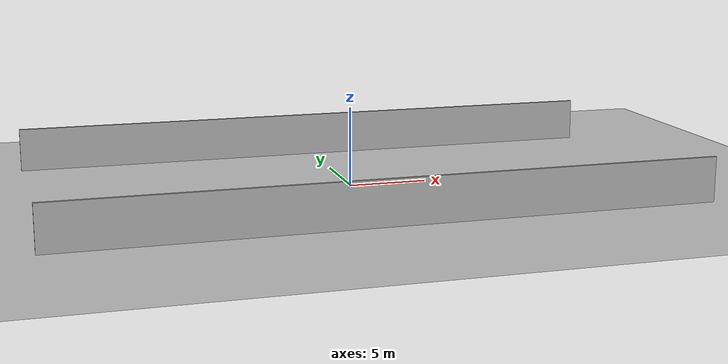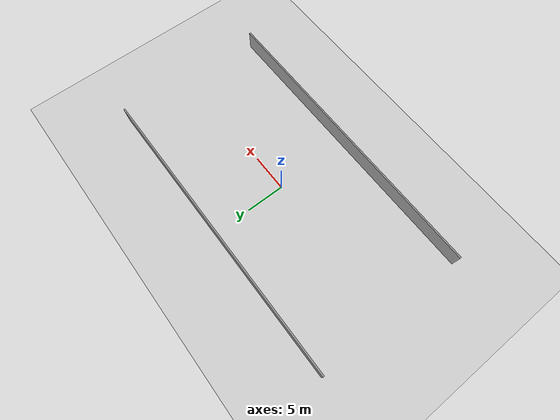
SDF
<?xml version="1.0" ?>
<sdf version="1.5">
      <world name="default">
      <include><uri>model://ground_plane</uri></include>
      <include><uri>model://sun</uri></include>

    <model name='wall_line_1'>
      <static>1</static>
      <link name='link'>

	  <pose frame=''>0.0 -10.0 1.4 0 0 0.0</pose>

        <collision name='collision'>
          <geometry>
            <box>
	     <size> 40.0 0.2 2.8 </size>

            </box>
          </geometry>
        </collision>

        <visual name='visual'>
          <cast_shadows>0</cast_shadows>
          <geometry>
            <box>
	     <size> 40.0 0.2 2.8 </size>

            </box>
          </geometry>
          <material>
            <script>
              <uri>model://grey_wall/materials/scripts</uri>
              <uri>model://grey_wall/materials/textures</uri>
              <name>vrc/grey_wall</name>
            </script>
          </material>
        </visual>
      </link>
    </model>

    <model name='wall_line_2'>
      <static>1</static>
      <link name='link'>

	  <pose frame=''>0.0 10.0 1.4 0 0 0.0</pose>

        <collision name='collision'>
          <geometry>
            <box>
	     <size> 40.0 0.2 2.8 </size>

            </box>
          </geometry>
        </collision>

        <visual name='visual'>
          <cast_shadows>0</cast_shadows>
          <geometry>
            <box>
	     <size> 40.0 0.2 2.8 </size>

            </box>
          </geometry>
          <material>
            <script>
              <uri>model://grey_wall/materials/scripts</uri>
              <uri>model://grey_wall/materials/textures</uri>
              <name>vrc/grey_wall</name>
            </script>
          </material>
        </visual>
      </link>
    </model>

            <plugin name="ActorPosesPlugin" filename="libActorPosesPlugin.so"></plugin>
      </world>
    </sdf>
